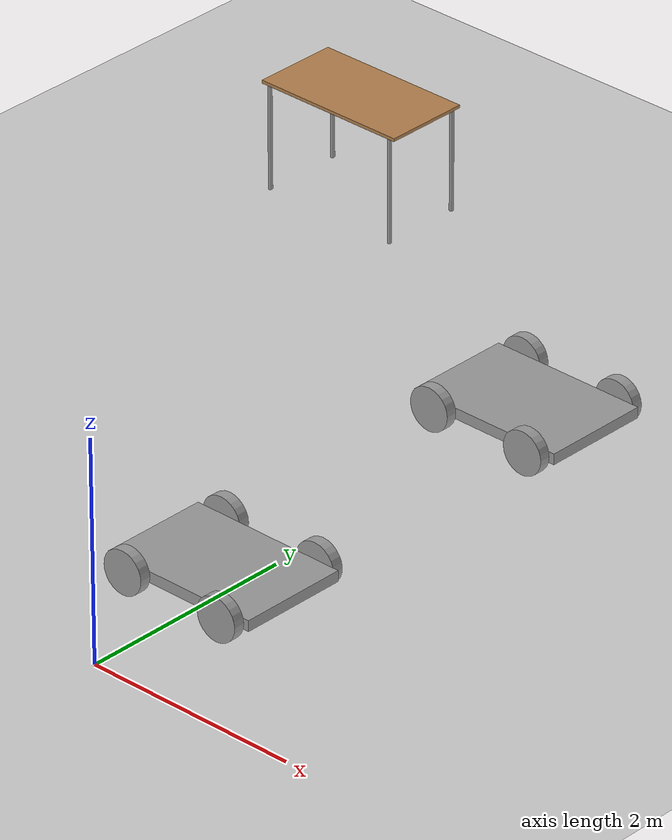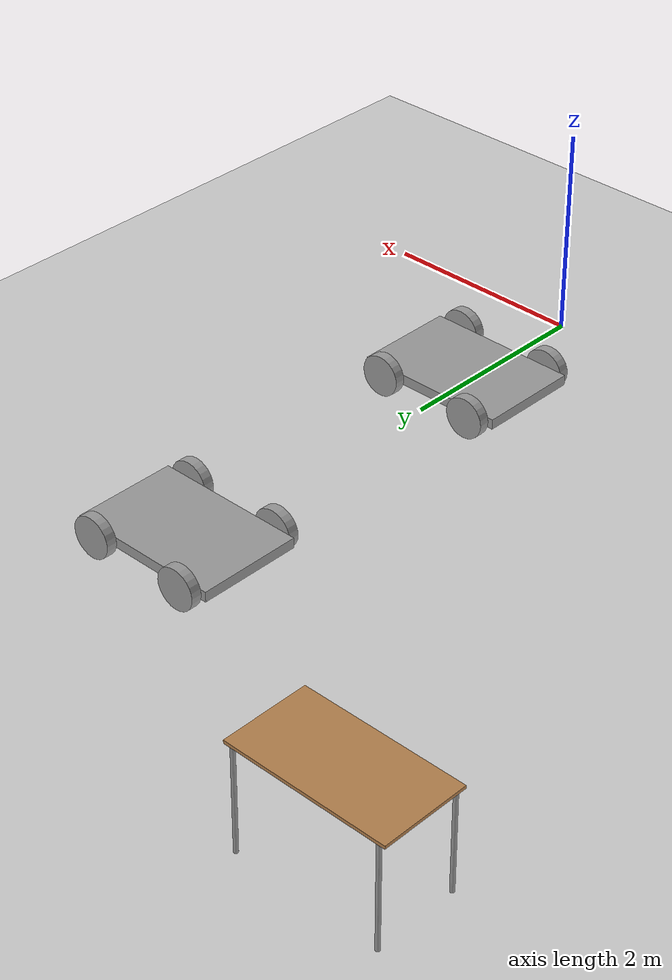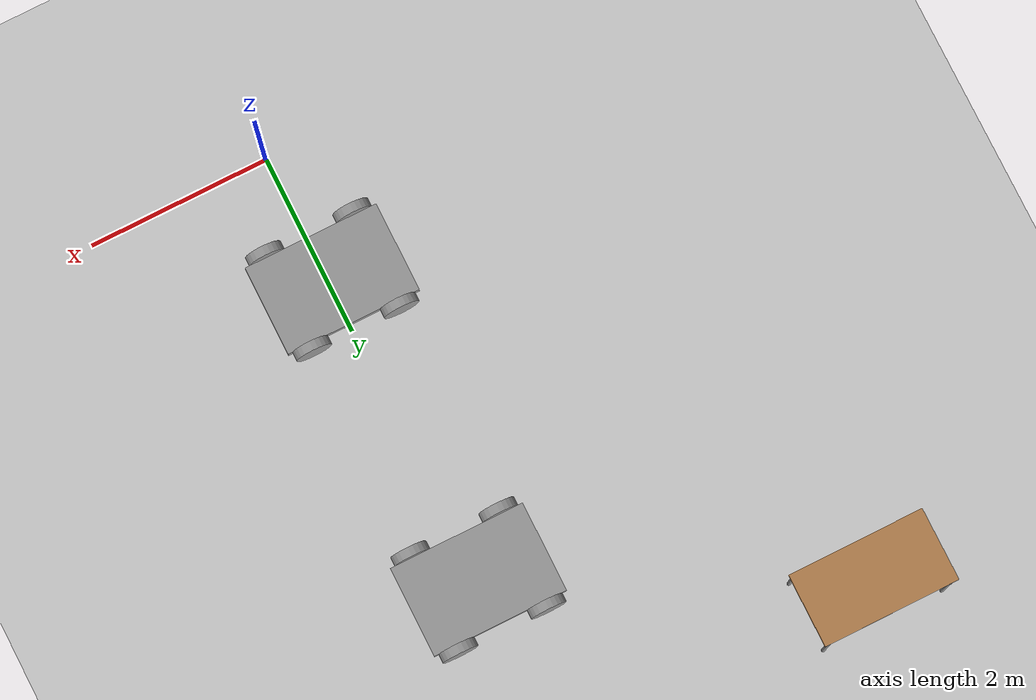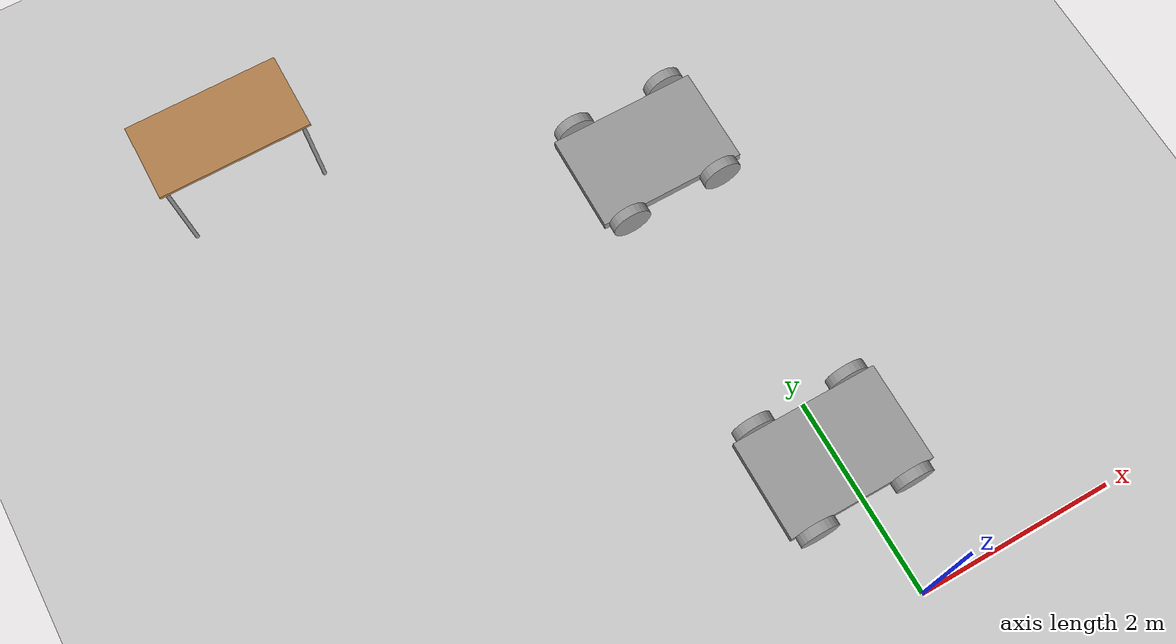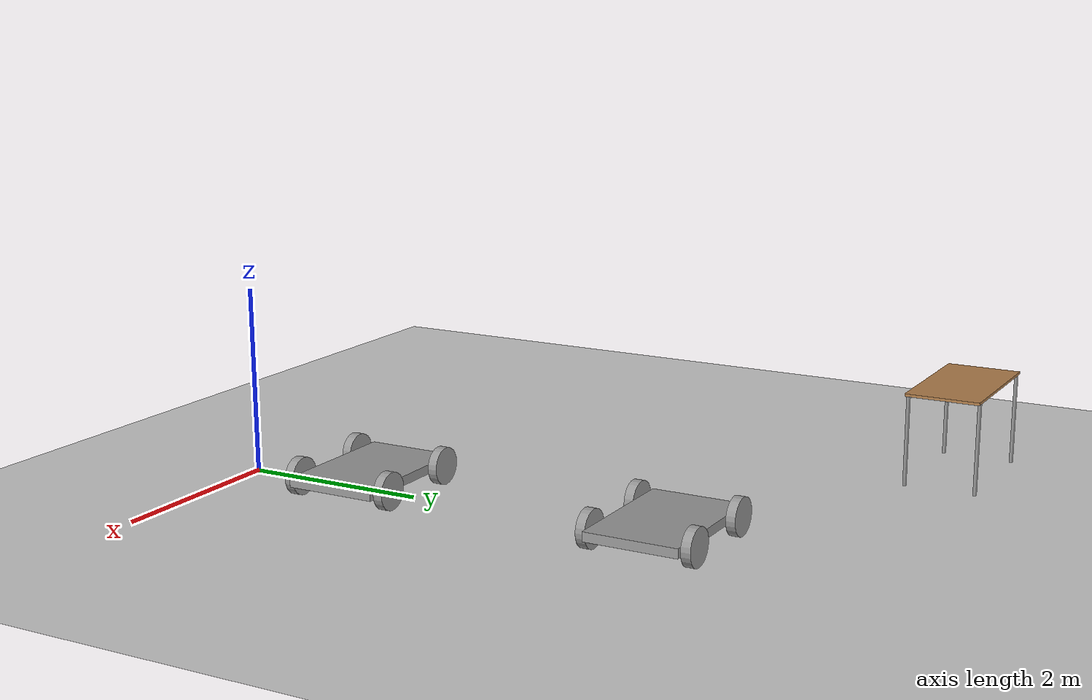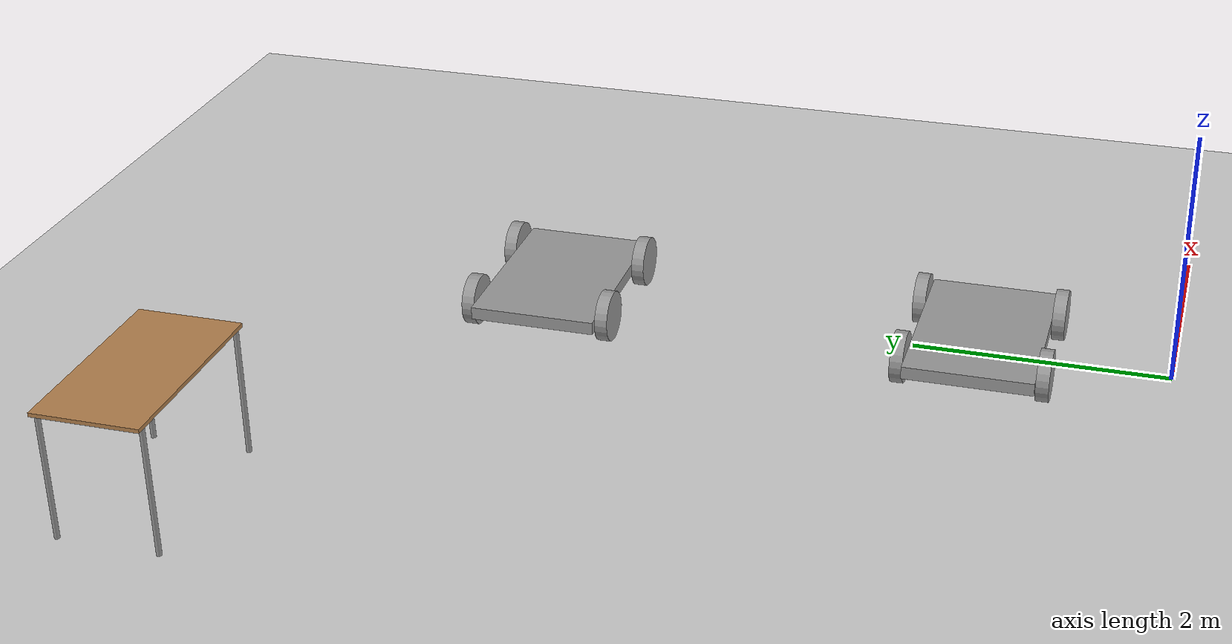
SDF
<sdf version="1.6">
 <world name="default">
  <model name="ground_plane">
   <static>1</static>
   <link name="link">
    <collision name="collision">
     <geometry><plane><normal>0 0 1</normal><size>100 100</size></plane></geometry>
     <surface>
      <contact><collide_bitmask>65535</collide_bitmask></contact>
      <friction><ode><mu>100</mu><mu2>50</mu2></ode></friction>
     </surface>
    </collision>
    <visual name="visual">
     <cast_shadows>0</cast_shadows>
     <geometry><plane><normal>0 0 1</normal><size>100 100</size></plane></geometry>
     <material>
      <script><uri>file://media/materials/scripts/gazebo.material</uri><name>Gazebo/Grey</name></script>
     </material>
    </visual>
   </link>
  </model>
  <model name="table_0">
   <static>1</static>
   <link name="link">
    <collision name="surface">
     <pose>0 0 1 0 -0 0</pose>
     <geometry><box><size>1.5 0.8 0.03</size></box></geometry>
     <surface><friction><ode><mu>0.6</mu><mu2>0.6</mu2></ode></friction></surface>
    </collision>
    <visual name="visual1">
     <pose>0 0 1 0 -0 0</pose>
     <geometry><box><size>1.5 0.8 0.03</size></box></geometry>
     <material>
      <script><uri>file://media/materials/scripts/gazebo.material</uri><name>Gazebo/Wood</name></script>
     </material>
    </visual>
    <collision name="front_left_leg">
     <pose>0.68 0.38 0.5 0 -0 0</pose>
     <geometry><cylinder><radius>0.02</radius><length>1</length></cylinder></geometry>
    </collision>
    <visual name="front_left_leg">
     <pose>0.68 0.38 0.5 0 -0 0</pose>
     <geometry><cylinder><radius>0.02</radius><length>1</length></cylinder></geometry>
     <material>
      <script><uri>file://media/materials/scripts/gazebo.material</uri><name>Gazebo/Grey</name></script>
     </material>
    </visual>
    <collision name="front_right_leg">
     <pose>0.68 -0.38 0.5 0 -0 0</pose>
     <geometry><cylinder><radius>0.02</radius><length>1</length></cylinder></geometry>
    </collision>
    <visual name="front_right_leg">
     <pose>0.68 -0.38 0.5 0 -0 0</pose>
     <geometry><cylinder><radius>0.02</radius><length>1</length></cylinder></geometry>
     <material>
      <script><uri>file://media/materials/scripts/gazebo.material</uri><name>Gazebo/Grey</name></script>
     </material>
    </visual>
    <collision name="back_right_leg">
     <pose>-0.68 -0.38 0.5 0 -0 0</pose>
     <geometry><cylinder><radius>0.02</radius><length>1</length></cylinder></geometry>
    </collision>
    <visual name="back_right_leg">
     <pose>-0.68 -0.38 0.5 0 -0 0</pose>
     <geometry><cylinder><radius>0.02</radius><length>1</length></cylinder></geometry>
     <material>
      <script><uri>file://media/materials/scripts/gazebo.material</uri><name>Gazebo/Grey</name></script>
     </material>
    </visual>
    <collision name="back_left_leg">
     <pose>-0.68 0.38 0.5 0 -0 0</pose>
     <geometry><cylinder><radius>0.02</radius><length>1</length></cylinder></geometry>
    </collision>
    <visual name="back_left_leg">
     <pose>-0.68 0.38 0.5 0 -0 0</pose>
     <geometry><cylinder><radius>0.02</radius><length>1</length></cylinder></geometry>
     <material>
      <script><uri>file://media/materials/scripts/gazebo.material</uri><name>Gazebo/Grey</name></script>
     </material>
    </visual>
   </link>
   <pose>-3.50642 6.71731 0 0 -0 0</pose>
  </model>
  <model name="rover_1">
   <link name="link_2">
    <inertial>
     <mass>1</mass>
     <inertia>
      <ixx>0.166667</ixx>
      <ixy>0</ixy>
      <ixz>0</ixz>
      <iyy>0.166667</iyy>
      <iyz>0</iyz>
      <izz>0.166667</izz>
     </inertia>
    </inertial>
    <visual name="visual">
     <geometry><box><size>1.5 1 0.1</size></box></geometry>
     <material>
      <lighting>1</lighting>
      <script><uri>file://media/materials/scripts/gazebo.material</uri><name>Gazebo/Grey</name></script>
      <shader type="pixel"><normal_map>__default__</normal_map></shader>
      <ambient>0.3 0.3 0.3 1</ambient>
      <diffuse>0.7 0.7 0.7 1</diffuse>
      <specular>0.01 0.01 0.01 1</specular>
      <emissive>0 0 0 1</emissive>
     </material>
    </visual>
    <collision name="collision">
     <geometry><box><size>1.5 1 0.1</size></box></geometry>
     <surface>
      <friction>
       <ode><mu>1</mu><mu2>1</mu2><fdir1>0 0 0</fdir1><slip1>0</slip1><slip2>0</slip2></ode>
       <torsional>
        <coefficient>1</coefficient>
        <patch_radius>0</patch_radius>
        <surface_radius>0</surface_radius>
        <use_patch_radius>1</use_patch_radius>
        <ode><slip>0</slip></ode>
       </torsional>
      </friction>
      <bounce><restitution_coefficient>0</restitution_coefficient><threshold>1e+06</threshold></bounce>
      <contact>
       <collide_without_contact>0</collide_without_contact>
       <collide_without_contact_bitmask>1</collide_without_contact_bitmask>
       <collide_bitmask>1</collide_bitmask>
       <ode>
        <soft_cfm>0</soft_cfm>
        <soft_erp>0.2</soft_erp>
        <kp>1e+13</kp>
        <kd>1</kd>
        <max_vel>0.01</max_vel>
        <min_depth>0</min_depth>
       </ode>
       <bullet>
        <split_impulse>1</split_impulse>
        <split_impulse_penetration_threshold>-0.01</split_impulse_penetration_threshold>
        <soft_cfm>0</soft_cfm>
        <soft_erp>0.2</soft_erp>
        <kp>1e+13</kp>
        <kd>1</kd>
       </bullet>
      </contact>
     </surface>
    </collision>
   </link>
   <link name="link_3">
    <pose>-0.5 -0.550019 -0 1.5707 -0 0</pose>
    <inertial>
     <mass>1</mass>
     <inertia><ixx>0.145833</ixx><ixy>0</ixy><ixz>0</ixz><iyy>0.145833</iyy><iyz>0</iyz><izz>0.125</izz></inertia>
    </inertial>
    <visual name="visual">
     <geometry><cylinder><radius>0.2</radius><length>0.1</length></cylinder></geometry>
     <material>
      <lighting>1</lighting>
      <script><uri>file://media/materials/scripts/gazebo.material</uri><name>Gazebo/Grey</name></script>
      <shader type="pixel"><normal_map>__default__</normal_map></shader>
      <ambient>0.3 0.3 0.3 1</ambient>
      <diffuse>0.7 0.7 0.7 1</diffuse>
      <specular>0.01 0.01 0.01 1</specular>
      <emissive>0 0 0 1</emissive>
     </material>
    </visual>
    <collision name="collision">
     <geometry><cylinder><radius>0.2</radius><length>0.1</length></cylinder></geometry>
     <surface>
      <friction>
       <ode><mu>1</mu><mu2>1</mu2><fdir1>0 0 0</fdir1><slip1>0</slip1><slip2>0</slip2></ode>
       <torsional>
        <coefficient>1</coefficient>
        <patch_radius>0</patch_radius>
        <surface_radius>0</surface_radius>
        <use_patch_radius>1</use_patch_radius>
        <ode><slip>0</slip></ode>
       </torsional>
      </friction>
      <bounce><restitution_coefficient>0</restitution_coefficient><threshold>1e+06</threshold></bounce>
      <contact>
       <collide_without_contact>0</collide_without_contact>
       <collide_without_contact_bitmask>1</collide_without_contact_bitmask>
       <collide_bitmask>1</collide_bitmask>
       <ode>
        <soft_cfm>0</soft_cfm>
        <soft_erp>0.2</soft_erp>
        <kp>1e+13</kp>
        <kd>1</kd>
        <max_vel>0.01</max_vel>
        <min_depth>0</min_depth>
       </ode>
       <bullet>
        <split_impulse>1</split_impulse>
        <split_impulse_penetration_threshold>-0.01</split_impulse_penetration_threshold>
        <soft_cfm>0</soft_cfm>
        <soft_erp>0.2</soft_erp>
        <kp>1e+13</kp>
        <kd>1</kd>
       </bullet>
      </contact>
     </surface>
    </collision>
   </link>
   <link name="link_3_clone">
    <pose>-0.5 0.550019 -0 1.5707 -0 0</pose>
    <inertial>
     <mass>1</mass>
     <inertia><ixx>0.145833</ixx><ixy>0</ixy><ixz>0</ixz><iyy>0.145833</iyy><iyz>0</iyz><izz>0.125</izz></inertia>
    </inertial>
    <visual name="visual">
     <geometry><cylinder><radius>0.2</radius><length>0.1</length></cylinder></geometry>
     <material>
      <lighting>1</lighting>
      <script><uri>file://media/materials/scripts/gazebo.material</uri><name>Gazebo/Grey</name></script>
      <shader type="pixel"><normal_map>__default__</normal_map></shader>
      <ambient>0.3 0.3 0.3 1</ambient>
      <diffuse>0.7 0.7 0.7 1</diffuse>
      <specular>0.01 0.01 0.01 1</specular>
      <emissive>0 0 0 1</emissive>
     </material>
    </visual>
    <collision name="collision">
     <geometry><cylinder><radius>0.2</radius><length>0.1</length></cylinder></geometry>
     <surface>
      <friction>
       <ode><mu>1</mu><mu2>1</mu2><fdir1>0 0 0</fdir1><slip1>0</slip1><slip2>0</slip2></ode>
       <torsional>
        <coefficient>1</coefficient>
        <patch_radius>0</patch_radius>
        <surface_radius>0</surface_radius>
        <use_patch_radius>1</use_patch_radius>
        <ode><slip>0</slip></ode>
       </torsional>
      </friction>
      <bounce><restitution_coefficient>0</restitution_coefficient><threshold>1e+06</threshold></bounce>
      <contact>
       <collide_without_contact>0</collide_without_contact>
       <collide_without_contact_bitmask>1</collide_without_contact_bitmask>
       <collide_bitmask>1</collide_bitmask>
       <ode>
        <soft_cfm>0</soft_cfm>
        <soft_erp>0.2</soft_erp>
        <kp>1e+13</kp>
        <kd>1</kd>
        <max_vel>0.01</max_vel>
        <min_depth>0</min_depth>
       </ode>
       <bullet>
        <split_impulse>1</split_impulse>
        <split_impulse_penetration_threshold>-0.01</split_impulse_penetration_threshold>
        <soft_cfm>0</soft_cfm>
        <soft_erp>0.2</soft_erp>
        <kp>1e+13</kp>
        <kd>1</kd>
       </bullet>
      </contact>
     </surface>
    </collision>
   </link>
   <link name="link_3_clone_0">
    <pose>0.5 -0.550019 0 1.5707 -0 0</pose>
    <inertial>
     <mass>1</mass>
     <inertia><ixx>0.145833</ixx><ixy>0</ixy><ixz>0</ixz><iyy>0.145833</iyy><iyz>0</iyz><izz>0.125</izz></inertia>
    </inertial>
    <visual name="visual">
     <geometry><cylinder><radius>0.2</radius><length>0.1</length></cylinder></geometry>
     <material>
      <lighting>1</lighting>
      <script><uri>file://media/materials/scripts/gazebo.material</uri><name>Gazebo/Grey</name></script>
      <shader type="pixel"><normal_map>__default__</normal_map></shader>
      <ambient>0.3 0.3 0.3 1</ambient>
      <diffuse>0.7 0.7 0.7 1</diffuse>
      <specular>0.01 0.01 0.01 1</specular>
      <emissive>0 0 0 1</emissive>
     </material>
    </visual>
    <collision name="collision">
     <geometry><cylinder><radius>0.2</radius><length>0.1</length></cylinder></geometry>
     <surface>
      <friction>
       <ode><mu>1</mu><mu2>1</mu2><fdir1>0 0 0</fdir1><slip1>0</slip1><slip2>0</slip2></ode>
       <torsional>
        <coefficient>1</coefficient>
        <patch_radius>0</patch_radius>
        <surface_radius>0</surface_radius>
        <use_patch_radius>1</use_patch_radius>
        <ode><slip>0</slip></ode>
       </torsional>
      </friction>
      <bounce><restitution_coefficient>0</restitution_coefficient><threshold>1e+06</threshold></bounce>
      <contact>
       <collide_without_contact>0</collide_without_contact>
       <collide_without_contact_bitmask>1</collide_without_contact_bitmask>
       <collide_bitmask>1</collide_bitmask>
       <ode>
        <soft_cfm>0</soft_cfm>
        <soft_erp>0.2</soft_erp>
        <kp>1e+13</kp>
        <kd>1</kd>
        <max_vel>0.01</max_vel>
        <min_depth>0</min_depth>
       </ode>
       <bullet>
        <split_impulse>1</split_impulse>
        <split_impulse_penetration_threshold>-0.01</split_impulse_penetration_threshold>
        <soft_cfm>0</soft_cfm>
        <soft_erp>0.2</soft_erp>
        <kp>1e+13</kp>
        <kd>1</kd>
       </bullet>
      </contact>
     </surface>
    </collision>
   </link>
   <link name="link_3_clone_clone">
    <pose>0.5 0.550019 0 1.5707 -0 0</pose>
    <inertial>
     <mass>1</mass>
     <inertia><ixx>0.145833</ixx><ixy>0</ixy><ixz>0</ixz><iyy>0.145833</iyy><iyz>0</iyz><izz>0.125</izz></inertia>
    </inertial>
    <visual name="visual">
     <geometry><cylinder><radius>0.2</radius><length>0.1</length></cylinder></geometry>
     <material>
      <lighting>1</lighting>
      <script><uri>file://media/materials/scripts/gazebo.material</uri><name>Gazebo/Grey</name></script>
      <shader type="pixel"><normal_map>__default__</normal_map></shader>
      <ambient>0.3 0.3 0.3 1</ambient>
      <diffuse>0.7 0.7 0.7 1</diffuse>
      <specular>0.01 0.01 0.01 1</specular>
      <emissive>0 0 0 1</emissive>
     </material>
    </visual>
    <collision name="collision">
     <geometry><cylinder><radius>0.2</radius><length>0.1</length></cylinder></geometry>
     <surface>
      <friction>
       <ode><mu>1</mu><mu2>1</mu2><fdir1>0 0 0</fdir1><slip1>0</slip1><slip2>0</slip2></ode>
       <torsional>
        <coefficient>1</coefficient>
        <patch_radius>0</patch_radius>
        <surface_radius>0</surface_radius>
        <use_patch_radius>1</use_patch_radius>
        <ode><slip>0</slip></ode>
       </torsional>
      </friction>
      <bounce><restitution_coefficient>0</restitution_coefficient><threshold>1e+06</threshold></bounce>
      <contact>
       <collide_without_contact>0</collide_without_contact>
       <collide_without_contact_bitmask>1</collide_without_contact_bitmask>
       <collide_bitmask>1</collide_bitmask>
       <ode>
        <soft_cfm>0</soft_cfm>
        <soft_erp>0.2</soft_erp>
        <kp>1e+13</kp>
        <kd>1</kd>
        <max_vel>0.01</max_vel>
        <min_depth>0</min_depth>
       </ode>
       <bullet>
        <split_impulse>1</split_impulse>
        <split_impulse_penetration_threshold>-0.01</split_impulse_penetration_threshold>
        <soft_cfm>0</soft_cfm>
        <soft_erp>0.2</soft_erp>
        <kp>1e+13</kp>
        <kd>1</kd>
       </bullet>
      </contact>
     </surface>
    </collision>
   </link>
   <joint name="link_2_JOINT_0" type="revolute">
    <parent>link_2</parent>
    <child>link_3</child>
    <axis>
     <xyz>0 0 1</xyz>
     <use_parent_model_frame>0</use_parent_model_frame>
     <limit>
      <lower>-1.79769e+308</lower>
      <upper>1.79769e+308</upper>
      <effort>-1</effort>
      <velocity>-1</velocity>
     </limit>
     <dynamics>
      <spring_reference>0</spring_reference>
      <spring_stiffness>0</spring_stiffness>
      <damping>0</damping>
      <friction>0</friction>
     </dynamics>
    </axis>
    <physics>
     <ode><limit><cfm>0</cfm><erp>0.2</erp></limit><suspension><cfm>0</cfm><erp>0.2</erp></suspension></ode>
    </physics>
   </joint>
   <joint name="link_2_JOINT_1" type="revolute">
    <parent>link_2</parent>
    <child>link_3_clone</child>
    <axis>
     <xyz>1 0 0</xyz>
     <use_parent_model_frame>0</use_parent_model_frame>
     <limit>
      <lower>-1.79769e+308</lower>
      <upper>1.79769e+308</upper>
      <effort>-1</effort>
      <velocity>-1</velocity>
     </limit>
     <dynamics>
      <spring_reference>0</spring_reference>
      <spring_stiffness>0</spring_stiffness>
      <damping>0</damping>
      <friction>0</friction>
     </dynamics>
    </axis>
    <physics>
     <ode><limit><cfm>0</cfm><erp>0.2</erp></limit><suspension><cfm>0</cfm><erp>0.2</erp></suspension></ode>
    </physics>
   </joint>
   <joint name="link_2_JOINT_2" type="revolute">
    <parent>link_2</parent>
    <child>link_3_clone_0</child>
    <axis>
     <xyz>1 0 0</xyz>
     <use_parent_model_frame>0</use_parent_model_frame>
     <limit>
      <lower>-1.79769e+308</lower>
      <upper>1.79769e+308</upper>
      <effort>-1</effort>
      <velocity>-1</velocity>
     </limit>
     <dynamics>
      <spring_reference>0</spring_reference>
      <spring_stiffness>0</spring_stiffness>
      <damping>0</damping>
      <friction>0</friction>
     </dynamics>
    </axis>
    <physics>
     <ode><limit><cfm>0</cfm><erp>0.2</erp></limit><suspension><cfm>0</cfm><erp>0.2</erp></suspension></ode>
    </physics>
   </joint>
   <joint name="link_2_JOINT_3" type="revolute">
    <parent>link_2</parent>
    <child>link_3_clone_clone</child>
    <axis>
     <xyz>1 0 0</xyz>
     <use_parent_model_frame>0</use_parent_model_frame>
     <limit>
      <lower>-1.79769e+308</lower>
      <upper>1.79769e+308</upper>
      <effort>-1</effort>
      <velocity>-1</velocity>
     </limit>
     <dynamics>
      <spring_reference>0</spring_reference>
      <spring_stiffness>0</spring_stiffness>
      <damping>0</damping>
      <friction>0</friction>
     </dynamics>
    </axis>
    <physics>
     <ode><limit><cfm>0</cfm><erp>0.2</erp></limit><suspension><cfm>0</cfm><erp>0.2</erp></suspension></ode>
    </physics>
   </joint>
   <static>0</static>
   <pose>-0.006865 4.89875 0.200001 -0 2e-06 -0.000764</pose>
  </model>
  <model name="rover_0">
   <link name="link_2">
    <inertial>
     <mass>1</mass>
     <inertia>
      <ixx>0.166667</ixx>
      <ixy>0</ixy>
      <ixz>0</ixz>
      <iyy>0.166667</iyy>
      <iyz>0</iyz>
      <izz>0.166667</izz>
     </inertia>
    </inertial>
    <visual name="visual">
     <geometry><box><size>1.5 1 0.1</size></box></geometry>
     <material>
      <lighting>1</lighting>
      <script><uri>file://media/materials/scripts/gazebo.material</uri><name>Gazebo/Grey</name></script>
      <shader type="pixel"><normal_map>__default__</normal_map></shader>
      <ambient>0.3 0.3 0.3 1</ambient>
      <diffuse>0.7 0.7 0.7 1</diffuse>
      <specular>0.01 0.01 0.01 1</specular>
      <emissive>0 0 0 1</emissive>
     </material>
    </visual>
    <collision name="collision">
     <geometry><box><size>1.5 1 0.1</size></box></geometry>
     <surface>
      <friction>
       <ode><mu>1</mu><mu2>1</mu2><fdir1>0 0 0</fdir1><slip1>0</slip1><slip2>0</slip2></ode>
       <torsional>
        <coefficient>1</coefficient>
        <patch_radius>0</patch_radius>
        <surface_radius>0</surface_radius>
        <use_patch_radius>1</use_patch_radius>
        <ode><slip>0</slip></ode>
       </torsional>
      </friction>
      <bounce><restitution_coefficient>0</restitution_coefficient><threshold>1e+06</threshold></bounce>
      <contact>
       <collide_without_contact>0</collide_without_contact>
       <collide_without_contact_bitmask>1</collide_without_contact_bitmask>
       <collide_bitmask>1</collide_bitmask>
       <ode>
        <soft_cfm>0</soft_cfm>
        <soft_erp>0.2</soft_erp>
        <kp>1e+13</kp>
        <kd>1</kd>
        <max_vel>0.01</max_vel>
        <min_depth>0</min_depth>
       </ode>
       <bullet>
        <split_impulse>1</split_impulse>
        <split_impulse_penetration_threshold>-0.01</split_impulse_penetration_threshold>
        <soft_cfm>0</soft_cfm>
        <soft_erp>0.2</soft_erp>
        <kp>1e+13</kp>
        <kd>1</kd>
       </bullet>
      </contact>
     </surface>
    </collision>
   </link>
   <link name="link_3">
    <pose>-0.5 -0.550019 -0 1.5707 -0 0</pose>
    <inertial>
     <mass>1</mass>
     <inertia><ixx>0.145833</ixx><ixy>0</ixy><ixz>0</ixz><iyy>0.145833</iyy><iyz>0</iyz><izz>0.125</izz></inertia>
    </inertial>
    <visual name="visual">
     <geometry><cylinder><radius>0.2</radius><length>0.1</length></cylinder></geometry>
     <material>
      <lighting>1</lighting>
      <script><uri>file://media/materials/scripts/gazebo.material</uri><name>Gazebo/Grey</name></script>
      <shader type="pixel"><normal_map>__default__</normal_map></shader>
      <ambient>0.3 0.3 0.3 1</ambient>
      <diffuse>0.7 0.7 0.7 1</diffuse>
      <specular>0.01 0.01 0.01 1</specular>
      <emissive>0 0 0 1</emissive>
     </material>
    </visual>
    <collision name="collision">
     <geometry><cylinder><radius>0.2</radius><length>0.1</length></cylinder></geometry>
     <surface>
      <friction>
       <ode><mu>1</mu><mu2>1</mu2><fdir1>0 0 0</fdir1><slip1>0</slip1><slip2>0</slip2></ode>
       <torsional>
        <coefficient>1</coefficient>
        <patch_radius>0</patch_radius>
        <surface_radius>0</surface_radius>
        <use_patch_radius>1</use_patch_radius>
        <ode><slip>0</slip></ode>
       </torsional>
      </friction>
      <bounce><restitution_coefficient>0</restitution_coefficient><threshold>1e+06</threshold></bounce>
      <contact>
       <collide_without_contact>0</collide_without_contact>
       <collide_without_contact_bitmask>1</collide_without_contact_bitmask>
       <collide_bitmask>1</collide_bitmask>
       <ode>
        <soft_cfm>0</soft_cfm>
        <soft_erp>0.2</soft_erp>
        <kp>1e+13</kp>
        <kd>1</kd>
        <max_vel>0.01</max_vel>
        <min_depth>0</min_depth>
       </ode>
       <bullet>
        <split_impulse>1</split_impulse>
        <split_impulse_penetration_threshold>-0.01</split_impulse_penetration_threshold>
        <soft_cfm>0</soft_cfm>
        <soft_erp>0.2</soft_erp>
        <kp>1e+13</kp>
        <kd>1</kd>
       </bullet>
      </contact>
     </surface>
    </collision>
   </link>
   <link name="link_3_clone">
    <pose>-0.5 0.550019 -0 1.5707 -0 0</pose>
    <inertial>
     <mass>1</mass>
     <inertia><ixx>0.145833</ixx><ixy>0</ixy><ixz>0</ixz><iyy>0.145833</iyy><iyz>0</iyz><izz>0.125</izz></inertia>
    </inertial>
    <visual name="visual">
     <geometry><cylinder><radius>0.2</radius><length>0.1</length></cylinder></geometry>
     <material>
      <lighting>1</lighting>
      <script><uri>file://media/materials/scripts/gazebo.material</uri><name>Gazebo/Grey</name></script>
      <shader type="pixel"><normal_map>__default__</normal_map></shader>
      <ambient>0.3 0.3 0.3 1</ambient>
      <diffuse>0.7 0.7 0.7 1</diffuse>
      <specular>0.01 0.01 0.01 1</specular>
      <emissive>0 0 0 1</emissive>
     </material>
    </visual>
    <collision name="collision">
     <geometry><cylinder><radius>0.2</radius><length>0.1</length></cylinder></geometry>
     <surface>
      <friction>
       <ode><mu>1</mu><mu2>1</mu2><fdir1>0 0 0</fdir1><slip1>0</slip1><slip2>0</slip2></ode>
       <torsional>
        <coefficient>1</coefficient>
        <patch_radius>0</patch_radius>
        <surface_radius>0</surface_radius>
        <use_patch_radius>1</use_patch_radius>
        <ode><slip>0</slip></ode>
       </torsional>
      </friction>
      <bounce><restitution_coefficient>0</restitution_coefficient><threshold>1e+06</threshold></bounce>
      <contact>
       <collide_without_contact>0</collide_without_contact>
       <collide_without_contact_bitmask>1</collide_without_contact_bitmask>
       <collide_bitmask>1</collide_bitmask>
       <ode>
        <soft_cfm>0</soft_cfm>
        <soft_erp>0.2</soft_erp>
        <kp>1e+13</kp>
        <kd>1</kd>
        <max_vel>0.01</max_vel>
        <min_depth>0</min_depth>
       </ode>
       <bullet>
        <split_impulse>1</split_impulse>
        <split_impulse_penetration_threshold>-0.01</split_impulse_penetration_threshold>
        <soft_cfm>0</soft_cfm>
        <soft_erp>0.2</soft_erp>
        <kp>1e+13</kp>
        <kd>1</kd>
       </bullet>
      </contact>
     </surface>
    </collision>
   </link>
   <link name="link_3_clone_0">
    <pose>0.5 -0.550019 0 1.5707 -0 0</pose>
    <inertial>
     <mass>1</mass>
     <inertia><ixx>0.145833</ixx><ixy>0</ixy><ixz>0</ixz><iyy>0.145833</iyy><iyz>0</iyz><izz>0.125</izz></inertia>
    </inertial>
    <visual name="visual">
     <geometry><cylinder><radius>0.2</radius><length>0.1</length></cylinder></geometry>
     <material>
      <lighting>1</lighting>
      <script><uri>file://media/materials/scripts/gazebo.material</uri><name>Gazebo/Grey</name></script>
      <shader type="pixel"><normal_map>__default__</normal_map></shader>
      <ambient>0.3 0.3 0.3 1</ambient>
      <diffuse>0.7 0.7 0.7 1</diffuse>
      <specular>0.01 0.01 0.01 1</specular>
      <emissive>0 0 0 1</emissive>
     </material>
    </visual>
    <collision name="collision">
     <geometry><cylinder><radius>0.2</radius><length>0.1</length></cylinder></geometry>
     <surface>
      <friction>
       <ode><mu>1</mu><mu2>1</mu2><fdir1>0 0 0</fdir1><slip1>0</slip1><slip2>0</slip2></ode>
       <torsional>
        <coefficient>1</coefficient>
        <patch_radius>0</patch_radius>
        <surface_radius>0</surface_radius>
        <use_patch_radius>1</use_patch_radius>
        <ode><slip>0</slip></ode>
       </torsional>
      </friction>
      <bounce><restitution_coefficient>0</restitution_coefficient><threshold>1e+06</threshold></bounce>
      <contact>
       <collide_without_contact>0</collide_without_contact>
       <collide_without_contact_bitmask>1</collide_without_contact_bitmask>
       <collide_bitmask>1</collide_bitmask>
       <ode>
        <soft_cfm>0</soft_cfm>
        <soft_erp>0.2</soft_erp>
        <kp>1e+13</kp>
        <kd>1</kd>
        <max_vel>0.01</max_vel>
        <min_depth>0</min_depth>
       </ode>
       <bullet>
        <split_impulse>1</split_impulse>
        <split_impulse_penetration_threshold>-0.01</split_impulse_penetration_threshold>
        <soft_cfm>0</soft_cfm>
        <soft_erp>0.2</soft_erp>
        <kp>1e+13</kp>
        <kd>1</kd>
       </bullet>
      </contact>
     </surface>
    </collision>
   </link>
   <link name="link_3_clone_clone">
    <pose>0.5 0.550019 0 1.5707 -0 0</pose>
    <inertial>
     <mass>1</mass>
     <inertia><ixx>0.145833</ixx><ixy>0</ixy><ixz>0</ixz><iyy>0.145833</iyy><iyz>0</iyz><izz>0.125</izz></inertia>
    </inertial>
    <visual name="visual">
     <geometry><cylinder><radius>0.2</radius><length>0.1</length></cylinder></geometry>
     <material>
      <lighting>1</lighting>
      <script><uri>file://media/materials/scripts/gazebo.material</uri><name>Gazebo/Grey</name></script>
      <shader type="pixel"><normal_map>__default__</normal_map></shader>
      <ambient>0.3 0.3 0.3 1</ambient>
      <diffuse>0.7 0.7 0.7 1</diffuse>
      <specular>0.01 0.01 0.01 1</specular>
      <emissive>0 0 0 1</emissive>
     </material>
    </visual>
    <collision name="collision">
     <geometry><cylinder><radius>0.2</radius><length>0.1</length></cylinder></geometry>
     <surface>
      <friction>
       <ode><mu>1</mu><mu2>1</mu2><fdir1>0 0 0</fdir1><slip1>0</slip1><slip2>0</slip2></ode>
       <torsional>
        <coefficient>1</coefficient>
        <patch_radius>0</patch_radius>
        <surface_radius>0</surface_radius>
        <use_patch_radius>1</use_patch_radius>
        <ode><slip>0</slip></ode>
       </torsional>
      </friction>
      <bounce><restitution_coefficient>0</restitution_coefficient><threshold>1e+06</threshold></bounce>
      <contact>
       <collide_without_contact>0</collide_without_contact>
       <collide_without_contact_bitmask>1</collide_without_contact_bitmask>
       <collide_bitmask>1</collide_bitmask>
       <ode>
        <soft_cfm>0</soft_cfm>
        <soft_erp>0.2</soft_erp>
        <kp>1e+13</kp>
        <kd>1</kd>
        <max_vel>0.01</max_vel>
        <min_depth>0</min_depth>
       </ode>
       <bullet>
        <split_impulse>1</split_impulse>
        <split_impulse_penetration_threshold>-0.01</split_impulse_penetration_threshold>
        <soft_cfm>0</soft_cfm>
        <soft_erp>0.2</soft_erp>
        <kp>1e+13</kp>
        <kd>1</kd>
       </bullet>
      </contact>
     </surface>
    </collision>
   </link>
   <joint name="link_2_JOINT_0" type="revolute">
    <parent>link_2</parent>
    <child>link_3</child>
    <axis>
     <xyz>0 0 1</xyz>
     <use_parent_model_frame>0</use_parent_model_frame>
     <limit>
      <lower>-1.79769e+308</lower>
      <upper>1.79769e+308</upper>
      <effort>-1</effort>
      <velocity>-1</velocity>
     </limit>
     <dynamics>
      <spring_reference>0</spring_reference>
      <spring_stiffness>0</spring_stiffness>
      <damping>0</damping>
      <friction>0</friction>
     </dynamics>
    </axis>
    <physics>
     <ode><limit><cfm>0</cfm><erp>0.2</erp></limit><suspension><cfm>0</cfm><erp>0.2</erp></suspension></ode>
    </physics>
   </joint>
   <joint name="link_2_JOINT_1" type="revolute">
    <parent>link_2</parent>
    <child>link_3_clone</child>
    <axis>
     <xyz>1 0 0</xyz>
     <use_parent_model_frame>0</use_parent_model_frame>
     <limit>
      <lower>-1.79769e+308</lower>
      <upper>1.79769e+308</upper>
      <effort>-1</effort>
      <velocity>-1</velocity>
     </limit>
     <dynamics>
      <spring_reference>0</spring_reference>
      <spring_stiffness>0</spring_stiffness>
      <damping>0</damping>
      <friction>0</friction>
     </dynamics>
    </axis>
    <physics>
     <ode><limit><cfm>0</cfm><erp>0.2</erp></limit><suspension><cfm>0</cfm><erp>0.2</erp></suspension></ode>
    </physics>
   </joint>
   <joint name="link_2_JOINT_2" type="revolute">
    <parent>link_2</parent>
    <child>link_3_clone_0</child>
    <axis>
     <xyz>1 0 0</xyz>
     <use_parent_model_frame>0</use_parent_model_frame>
     <limit>
      <lower>-1.79769e+308</lower>
      <upper>1.79769e+308</upper>
      <effort>-1</effort>
      <velocity>-1</velocity>
     </limit>
     <dynamics>
      <spring_reference>0</spring_reference>
      <spring_stiffness>0</spring_stiffness>
      <damping>0</damping>
      <friction>0</friction>
     </dynamics>
    </axis>
    <physics>
     <ode><limit><cfm>0</cfm><erp>0.2</erp></limit><suspension><cfm>0</cfm><erp>0.2</erp></suspension></ode>
    </physics>
   </joint>
   <joint name="link_2_JOINT_3" type="revolute">
    <parent>link_2</parent>
    <child>link_3_clone_clone</child>
    <axis>
     <xyz>1 0 0</xyz>
     <use_parent_model_frame>0</use_parent_model_frame>
     <limit>
      <lower>-1.79769e+308</lower>
      <upper>1.79769e+308</upper>
      <effort>-1</effort>
      <velocity>-1</velocity>
     </limit>
     <dynamics>
      <spring_reference>0</spring_reference>
      <spring_stiffness>0</spring_stiffness>
      <damping>0</damping>
      <friction>0</friction>
     </dynamics>
    </axis>
    <physics>
     <ode><limit><cfm>0</cfm><erp>0.2</erp></limit><suspension><cfm>0</cfm><erp>0.2</erp></suspension></ode>
    </physics>
   </joint>
   <static>0</static>
   <pose>-0.052092 1.46077 0.200001 0 2e-06 -0.000491</pose>
  </model>
 </world>
</sdf>
